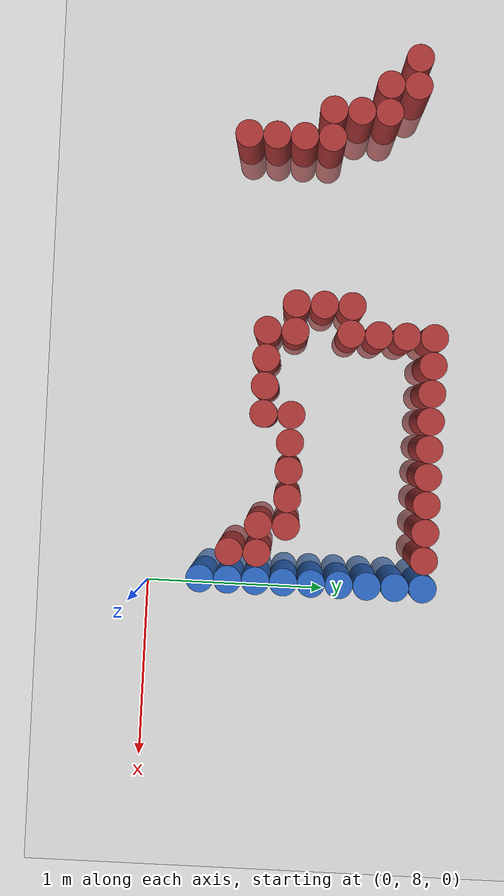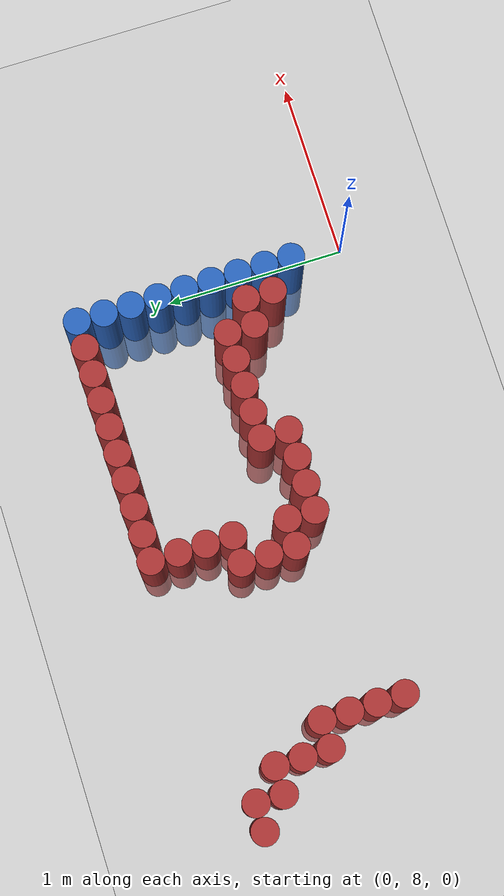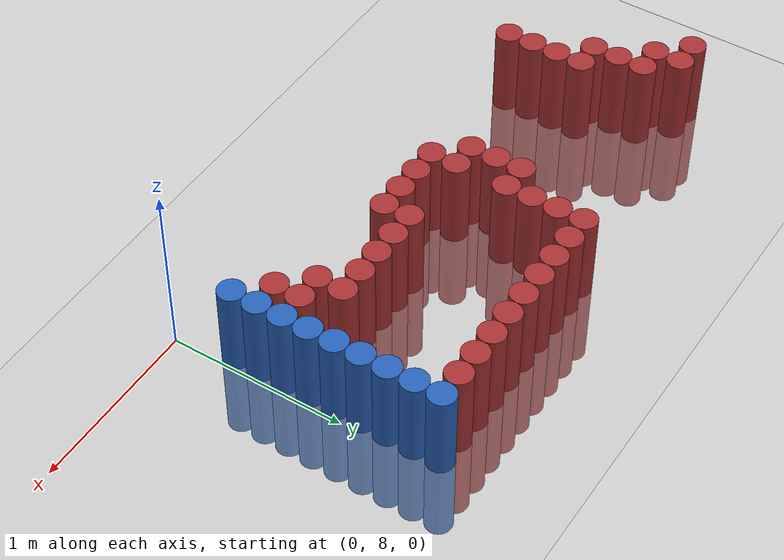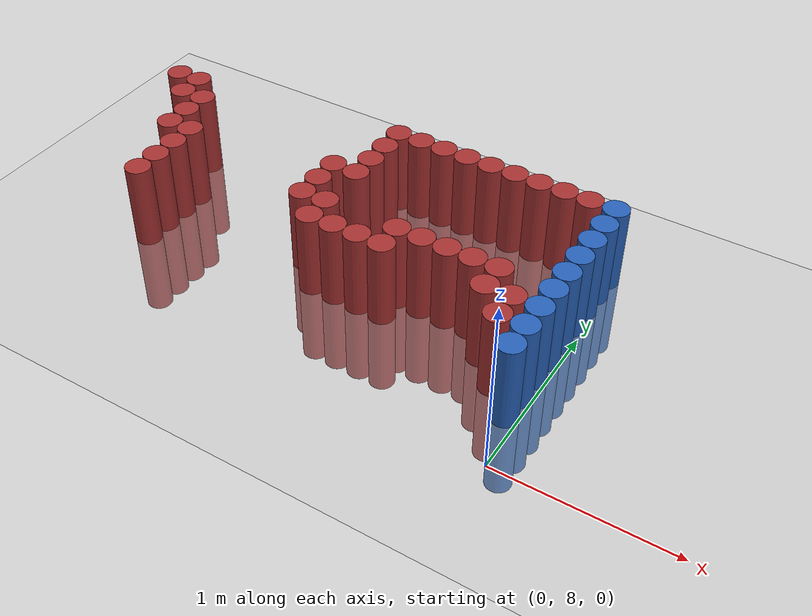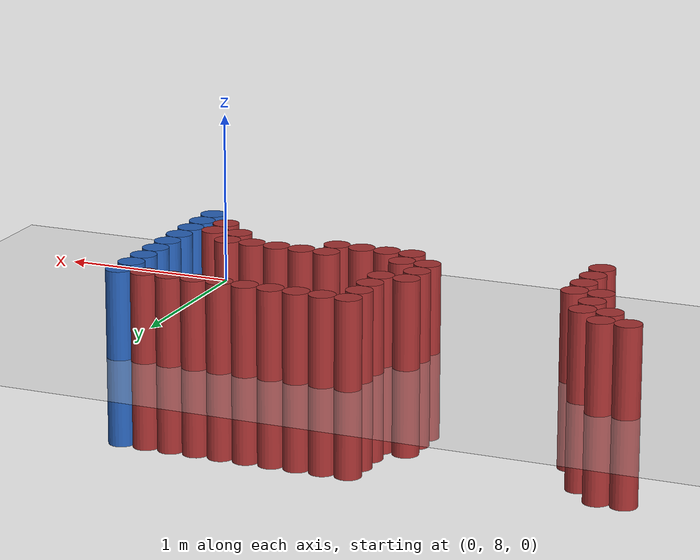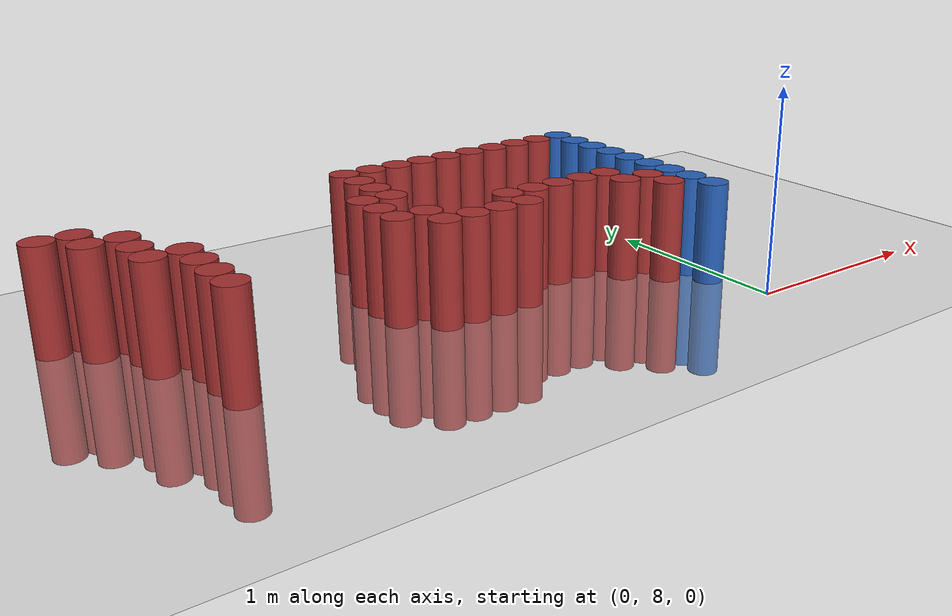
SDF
<sdf version="1.6">
 <world name="default">
  <model name="ground_plane">
   <static>1</static>
   <link name="link">
    <collision name="collision">
     <geometry><plane><normal>0 0 1</normal><size>100 100</size></plane></geometry>
     <surface><friction><ode><mu>100</mu><mu2>50</mu2></ode></friction></surface>
    </collision>
    <visual name="visual">
     <cast_shadows>0</cast_shadows>
     <geometry><plane><normal>0 0 1</normal><size>100 100</size></plane></geometry>
     <material>
      <script><uri>file://media/materials/scripts/gazebo.material</uri><name>Gazebo/Grey</name></script>
     </material>
    </visual>
   </link>
  </model>
  <model name="unit_cylinder_167">
   <static>1</static>
   <pose>-2.925000 9.375000 0.000000 0.000000 0.000000 0.000000</pose>
   <link name="link">
    <inertial>
     <mass>1</mass>
     <inertia><ixx>0.145833</ixx><ixy>0</ixy><ixz>0</ixz><iyy>0.145833</iyy><iyz>0</iyz><izz>0.125</izz></inertia>
    </inertial>
    <collision name="collision">
     <geometry><cylinder><radius>0.075000</radius><length>1</length></cylinder></geometry>
    </collision>
    <visual name="visual">
     <geometry><cylinder><radius>0.075000</radius><length>1</length></cylinder></geometry>
     <material>
      <ambient>0.648000 0.192000 0.192000 1</ambient>
      <diffuse>0.648000 0.192000 0.192000 1</diffuse>
     </material>
     <material>
      <script><name>Gazebo/Grey</name><uri>file://media/materials/scripts/gazebo.material</uri></script>
     </material>
    </visual>
   </link>
  </model>
  <model name="unit_cylinder_172">
   <static>1</static>
   <pose>-2.775000 9.225000 0.000000 0.000000 0.000000 0.000000</pose>
   <link name="link">
    <inertial>
     <mass>1</mass>
     <inertia><ixx>0.145833</ixx><ixy>0</ixy><ixz>0</ixz><iyy>0.145833</iyy><iyz>0</iyz><izz>0.125</izz></inertia>
    </inertial>
    <collision name="collision">
     <geometry><cylinder><radius>0.075000</radius><length>1</length></cylinder></geometry>
    </collision>
    <visual name="visual">
     <geometry><cylinder><radius>0.075000</radius><length>1</length></cylinder></geometry>
     <material>
      <ambient>0.648000 0.192000 0.192000 1</ambient>
      <diffuse>0.648000 0.192000 0.192000 1</diffuse>
     </material>
     <material>
      <script><name>Gazebo/Grey</name><uri>file://media/materials/scripts/gazebo.material</uri></script>
     </material>
    </visual>
   </link>
  </model>
  <model name="unit_cylinder_173">
   <static>1</static>
   <pose>-2.775000 9.375000 0.000000 0.000000 0.000000 0.000000</pose>
   <link name="link">
    <inertial>
     <mass>1</mass>
     <inertia><ixx>0.145833</ixx><ixy>0</ixy><ixz>0</ixz><iyy>0.145833</iyy><iyz>0</iyz><izz>0.125</izz></inertia>
    </inertial>
    <collision name="collision">
     <geometry><cylinder><radius>0.075000</radius><length>1</length></cylinder></geometry>
    </collision>
    <visual name="visual">
     <geometry><cylinder><radius>0.075000</radius><length>1</length></cylinder></geometry>
     <material>
      <ambient>0.648000 0.192000 0.192000 1</ambient>
      <diffuse>0.648000 0.192000 0.192000 1</diffuse>
     </material>
     <material>
      <script><name>Gazebo/Grey</name><uri>file://media/materials/scripts/gazebo.material</uri></script>
     </material>
    </visual>
   </link>
  </model>
  <model name="unit_cylinder_180">
   <static>1</static>
   <pose>-2.625000 8.925000 0.000000 0.000000 0.000000 0.000000</pose>
   <link name="link">
    <inertial>
     <mass>1</mass>
     <inertia><ixx>0.145833</ixx><ixy>0</ixy><ixz>0</ixz><iyy>0.145833</iyy><iyz>0</iyz><izz>0.125</izz></inertia>
    </inertial>
    <collision name="collision">
     <geometry><cylinder><radius>0.075000</radius><length>1</length></cylinder></geometry>
    </collision>
    <visual name="visual">
     <geometry><cylinder><radius>0.075000</radius><length>1</length></cylinder></geometry>
     <material>
      <ambient>0.648000 0.192000 0.192000 1</ambient>
      <diffuse>0.648000 0.192000 0.192000 1</diffuse>
     </material>
     <material>
      <script><name>Gazebo/Grey</name><uri>file://media/materials/scripts/gazebo.material</uri></script>
     </material>
    </visual>
   </link>
  </model>
  <model name="unit_cylinder_181">
   <static>1</static>
   <pose>-2.625000 9.075000 0.000000 0.000000 0.000000 0.000000</pose>
   <link name="link">
    <inertial>
     <mass>1</mass>
     <inertia><ixx>0.145833</ixx><ixy>0</ixy><ixz>0</ixz><iyy>0.145833</iyy><iyz>0</iyz><izz>0.125</izz></inertia>
    </inertial>
    <collision name="collision">
     <geometry><cylinder><radius>0.075000</radius><length>1</length></cylinder></geometry>
    </collision>
    <visual name="visual">
     <geometry><cylinder><radius>0.075000</radius><length>1</length></cylinder></geometry>
     <material>
      <ambient>0.648000 0.192000 0.192000 1</ambient>
      <diffuse>0.648000 0.192000 0.192000 1</diffuse>
     </material>
     <material>
      <script><name>Gazebo/Grey</name><uri>file://media/materials/scripts/gazebo.material</uri></script>
     </material>
    </visual>
   </link>
  </model>
  <model name="unit_cylinder_182">
   <static>1</static>
   <pose>-2.625000 9.225000 0.000000 0.000000 0.000000 0.000000</pose>
   <link name="link">
    <inertial>
     <mass>1</mass>
     <inertia><ixx>0.145833</ixx><ixy>0</ixy><ixz>0</ixz><iyy>0.145833</iyy><iyz>0</iyz><izz>0.125</izz></inertia>
    </inertial>
    <collision name="collision">
     <geometry><cylinder><radius>0.075000</radius><length>1</length></cylinder></geometry>
    </collision>
    <visual name="visual">
     <geometry><cylinder><radius>0.075000</radius><length>1</length></cylinder></geometry>
     <material>
      <ambient>0.648000 0.192000 0.192000 1</ambient>
      <diffuse>0.648000 0.192000 0.192000 1</diffuse>
     </material>
     <material>
      <script><name>Gazebo/Grey</name><uri>file://media/materials/scripts/gazebo.material</uri></script>
     </material>
    </visual>
   </link>
  </model>
  <model name="unit_cylinder_189">
   <static>1</static>
   <pose>-2.475000 8.475000 0.000000 0.000000 0.000000 0.000000</pose>
   <link name="link">
    <inertial>
     <mass>1</mass>
     <inertia><ixx>0.145833</ixx><ixy>0</ixy><ixz>0</ixz><iyy>0.145833</iyy><iyz>0</iyz><izz>0.125</izz></inertia>
    </inertial>
    <collision name="collision">
     <geometry><cylinder><radius>0.075000</radius><length>1</length></cylinder></geometry>
    </collision>
    <visual name="visual">
     <geometry><cylinder><radius>0.075000</radius><length>1</length></cylinder></geometry>
     <material>
      <ambient>0.648000 0.192000 0.192000 1</ambient>
      <diffuse>0.648000 0.192000 0.192000 1</diffuse>
     </material>
     <material>
      <script><name>Gazebo/Grey</name><uri>file://media/materials/scripts/gazebo.material</uri></script>
     </material>
    </visual>
   </link>
  </model>
  <model name="unit_cylinder_190">
   <static>1</static>
   <pose>-2.475000 8.625000 0.000000 0.000000 0.000000 0.000000</pose>
   <link name="link">
    <inertial>
     <mass>1</mass>
     <inertia><ixx>0.145833</ixx><ixy>0</ixy><ixz>0</ixz><iyy>0.145833</iyy><iyz>0</iyz><izz>0.125</izz></inertia>
    </inertial>
    <collision name="collision">
     <geometry><cylinder><radius>0.075000</radius><length>1</length></cylinder></geometry>
    </collision>
    <visual name="visual">
     <geometry><cylinder><radius>0.075000</radius><length>1</length></cylinder></geometry>
     <material>
      <ambient>0.648000 0.192000 0.192000 1</ambient>
      <diffuse>0.648000 0.192000 0.192000 1</diffuse>
     </material>
     <material>
      <script><name>Gazebo/Grey</name><uri>file://media/materials/scripts/gazebo.material</uri></script>
     </material>
    </visual>
   </link>
  </model>
  <model name="unit_cylinder_191">
   <static>1</static>
   <pose>-2.475000 8.775000 0.000000 0.000000 0.000000 0.000000</pose>
   <link name="link">
    <inertial>
     <mass>1</mass>
     <inertia><ixx>0.145833</ixx><ixy>0</ixy><ixz>0</ixz><iyy>0.145833</iyy><iyz>0</iyz><izz>0.125</izz></inertia>
    </inertial>
    <collision name="collision">
     <geometry><cylinder><radius>0.075000</radius><length>1</length></cylinder></geometry>
    </collision>
    <visual name="visual">
     <geometry><cylinder><radius>0.075000</radius><length>1</length></cylinder></geometry>
     <material>
      <ambient>0.648000 0.192000 0.192000 1</ambient>
      <diffuse>0.648000 0.192000 0.192000 1</diffuse>
     </material>
     <material>
      <script><name>Gazebo/Grey</name><uri>file://media/materials/scripts/gazebo.material</uri></script>
     </material>
    </visual>
   </link>
  </model>
  <model name="unit_cylinder_192">
   <static>1</static>
   <pose>-2.475000 8.925000 0.000000 0.000000 0.000000 0.000000</pose>
   <link name="link">
    <inertial>
     <mass>1</mass>
     <inertia><ixx>0.145833</ixx><ixy>0</ixy><ixz>0</ixz><iyy>0.145833</iyy><iyz>0</iyz><izz>0.125</izz></inertia>
    </inertial>
    <collision name="collision">
     <geometry><cylinder><radius>0.075000</radius><length>1</length></cylinder></geometry>
    </collision>
    <visual name="visual">
     <geometry><cylinder><radius>0.075000</radius><length>1</length></cylinder></geometry>
     <material>
      <ambient>0.648000 0.192000 0.192000 1</ambient>
      <diffuse>0.648000 0.192000 0.192000 1</diffuse>
     </material>
     <material>
      <script><name>Gazebo/Grey</name><uri>file://media/materials/scripts/gazebo.material</uri></script>
     </material>
    </visual>
   </link>
  </model>
  <model name="unit_cylinder_203">
   <static>1</static>
   <pose>-1.575000 8.775000 0.000000 0.000000 0.000000 0.000000</pose>
   <link name="link">
    <inertial>
     <mass>1</mass>
     <inertia><ixx>0.145833</ixx><ixy>0</ixy><ixz>0</ixz><iyy>0.145833</iyy><iyz>0</iyz><izz>0.125</izz></inertia>
    </inertial>
    <collision name="collision">
     <geometry><cylinder><radius>0.075000</radius><length>1</length></cylinder></geometry>
    </collision>
    <visual name="visual">
     <geometry><cylinder><radius>0.075000</radius><length>1</length></cylinder></geometry>
     <material>
      <ambient>0.648000 0.192000 0.192000 1</ambient>
      <diffuse>0.648000 0.192000 0.192000 1</diffuse>
     </material>
     <material>
      <script><name>Gazebo/Grey</name><uri>file://media/materials/scripts/gazebo.material</uri></script>
     </material>
    </visual>
   </link>
  </model>
  <model name="unit_cylinder_204">
   <static>1</static>
   <pose>-1.575000 8.925000 0.000000 0.000000 0.000000 0.000000</pose>
   <link name="link">
    <inertial>
     <mass>1</mass>
     <inertia><ixx>0.145833</ixx><ixy>0</ixy><ixz>0</ixz><iyy>0.145833</iyy><iyz>0</iyz><izz>0.125</izz></inertia>
    </inertial>
    <collision name="collision">
     <geometry><cylinder><radius>0.075000</radius><length>1</length></cylinder></geometry>
    </collision>
    <visual name="visual">
     <geometry><cylinder><radius>0.075000</radius><length>1</length></cylinder></geometry>
     <material>
      <ambient>0.648000 0.192000 0.192000 1</ambient>
      <diffuse>0.648000 0.192000 0.192000 1</diffuse>
     </material>
     <material>
      <script><name>Gazebo/Grey</name><uri>file://media/materials/scripts/gazebo.material</uri></script>
     </material>
    </visual>
   </link>
  </model>
  <model name="unit_cylinder_205">
   <static>1</static>
   <pose>-1.575000 9.075000 0.000000 0.000000 0.000000 0.000000</pose>
   <link name="link">
    <inertial>
     <mass>1</mass>
     <inertia><ixx>0.145833</ixx><ixy>0</ixy><ixz>0</ixz><iyy>0.145833</iyy><iyz>0</iyz><izz>0.125</izz></inertia>
    </inertial>
    <collision name="collision">
     <geometry><cylinder><radius>0.075000</radius><length>1</length></cylinder></geometry>
    </collision>
    <visual name="visual">
     <geometry><cylinder><radius>0.075000</radius><length>1</length></cylinder></geometry>
     <material>
      <ambient>0.648000 0.192000 0.192000 1</ambient>
      <diffuse>0.648000 0.192000 0.192000 1</diffuse>
     </material>
     <material>
      <script><name>Gazebo/Grey</name><uri>file://media/materials/scripts/gazebo.material</uri></script>
     </material>
    </visual>
   </link>
  </model>
  <model name="unit_cylinder_206">
   <static>1</static>
   <pose>-1.425000 8.625000 0.000000 0.000000 0.000000 0.000000</pose>
   <link name="link">
    <inertial>
     <mass>1</mass>
     <inertia><ixx>0.145833</ixx><ixy>0</ixy><ixz>0</ixz><iyy>0.145833</iyy><iyz>0</iyz><izz>0.125</izz></inertia>
    </inertial>
    <collision name="collision">
     <geometry><cylinder><radius>0.075000</radius><length>1</length></cylinder></geometry>
    </collision>
    <visual name="visual">
     <geometry><cylinder><radius>0.075000</radius><length>1</length></cylinder></geometry>
     <material>
      <ambient>0.648000 0.192000 0.192000 1</ambient>
      <diffuse>0.648000 0.192000 0.192000 1</diffuse>
     </material>
     <material>
      <script><name>Gazebo/Grey</name><uri>file://media/materials/scripts/gazebo.material</uri></script>
     </material>
    </visual>
   </link>
  </model>
  <model name="unit_cylinder_207">
   <static>1</static>
   <pose>-1.425000 8.775000 0.000000 0.000000 0.000000 0.000000</pose>
   <link name="link">
    <inertial>
     <mass>1</mass>
     <inertia><ixx>0.145833</ixx><ixy>0</ixy><ixz>0</ixz><iyy>0.145833</iyy><iyz>0</iyz><izz>0.125</izz></inertia>
    </inertial>
    <collision name="collision">
     <geometry><cylinder><radius>0.075000</radius><length>1</length></cylinder></geometry>
    </collision>
    <visual name="visual">
     <geometry><cylinder><radius>0.075000</radius><length>1</length></cylinder></geometry>
     <material>
      <ambient>0.648000 0.192000 0.192000 1</ambient>
      <diffuse>0.648000 0.192000 0.192000 1</diffuse>
     </material>
     <material>
      <script><name>Gazebo/Grey</name><uri>file://media/materials/scripts/gazebo.material</uri></script>
     </material>
    </visual>
   </link>
  </model>
  <model name="unit_cylinder_208">
   <static>1</static>
   <pose>-1.425000 9.075000 0.000000 0.000000 0.000000 0.000000</pose>
   <link name="link">
    <inertial>
     <mass>1</mass>
     <inertia><ixx>0.145833</ixx><ixy>0</ixy><ixz>0</ixz><iyy>0.145833</iyy><iyz>0</iyz><izz>0.125</izz></inertia>
    </inertial>
    <collision name="collision">
     <geometry><cylinder><radius>0.075000</radius><length>1</length></cylinder></geometry>
    </collision>
    <visual name="visual">
     <geometry><cylinder><radius>0.075000</radius><length>1</length></cylinder></geometry>
     <material>
      <ambient>0.648000 0.192000 0.192000 1</ambient>
      <diffuse>0.648000 0.192000 0.192000 1</diffuse>
     </material>
     <material>
      <script><name>Gazebo/Grey</name><uri>file://media/materials/scripts/gazebo.material</uri></script>
     </material>
    </visual>
   </link>
  </model>
  <model name="unit_cylinder_209">
   <static>1</static>
   <pose>-1.425000 9.225000 0.000000 0.000000 0.000000 0.000000</pose>
   <link name="link">
    <inertial>
     <mass>1</mass>
     <inertia><ixx>0.145833</ixx><ixy>0</ixy><ixz>0</ixz><iyy>0.145833</iyy><iyz>0</iyz><izz>0.125</izz></inertia>
    </inertial>
    <collision name="collision">
     <geometry><cylinder><radius>0.075000</radius><length>1</length></cylinder></geometry>
    </collision>
    <visual name="visual">
     <geometry><cylinder><radius>0.075000</radius><length>1</length></cylinder></geometry>
     <material>
      <ambient>0.648000 0.192000 0.192000 1</ambient>
      <diffuse>0.648000 0.192000 0.192000 1</diffuse>
     </material>
     <material>
      <script><name>Gazebo/Grey</name><uri>file://media/materials/scripts/gazebo.material</uri></script>
     </material>
    </visual>
   </link>
  </model>
  <model name="unit_cylinder_210">
   <static>1</static>
   <pose>-1.425000 9.375000 0.000000 0.000000 0.000000 0.000000</pose>
   <link name="link">
    <inertial>
     <mass>1</mass>
     <inertia><ixx>0.145833</ixx><ixy>0</ixy><ixz>0</ixz><iyy>0.145833</iyy><iyz>0</iyz><izz>0.125</izz></inertia>
    </inertial>
    <collision name="collision">
     <geometry><cylinder><radius>0.075000</radius><length>1</length></cylinder></geometry>
    </collision>
    <visual name="visual">
     <geometry><cylinder><radius>0.075000</radius><length>1</length></cylinder></geometry>
     <material>
      <ambient>0.648000 0.192000 0.192000 1</ambient>
      <diffuse>0.648000 0.192000 0.192000 1</diffuse>
     </material>
     <material>
      <script><name>Gazebo/Grey</name><uri>file://media/materials/scripts/gazebo.material</uri></script>
     </material>
    </visual>
   </link>
  </model>
  <model name="unit_cylinder_211">
   <static>1</static>
   <pose>-1.425000 9.525000 0.000000 0.000000 0.000000 0.000000</pose>
   <link name="link">
    <inertial>
     <mass>1</mass>
     <inertia><ixx>0.145833</ixx><ixy>0</ixy><ixz>0</ixz><iyy>0.145833</iyy><iyz>0</iyz><izz>0.125</izz></inertia>
    </inertial>
    <collision name="collision">
     <geometry><cylinder><radius>0.075000</radius><length>1</length></cylinder></geometry>
    </collision>
    <visual name="visual">
     <geometry><cylinder><radius>0.075000</radius><length>1</length></cylinder></geometry>
     <material>
      <ambient>0.648000 0.192000 0.192000 1</ambient>
      <diffuse>0.648000 0.192000 0.192000 1</diffuse>
     </material>
     <material>
      <script><name>Gazebo/Grey</name><uri>file://media/materials/scripts/gazebo.material</uri></script>
     </material>
    </visual>
   </link>
  </model>
  <model name="unit_cylinder_212">
   <static>1</static>
   <pose>-1.275000 8.625000 0.000000 0.000000 0.000000 0.000000</pose>
   <link name="link">
    <inertial>
     <mass>1</mass>
     <inertia><ixx>0.145833</ixx><ixy>0</ixy><ixz>0</ixz><iyy>0.145833</iyy><iyz>0</iyz><izz>0.125</izz></inertia>
    </inertial>
    <collision name="collision">
     <geometry><cylinder><radius>0.075000</radius><length>1</length></cylinder></geometry>
    </collision>
    <visual name="visual">
     <geometry><cylinder><radius>0.075000</radius><length>1</length></cylinder></geometry>
     <material>
      <ambient>0.648000 0.192000 0.192000 1</ambient>
      <diffuse>0.648000 0.192000 0.192000 1</diffuse>
     </material>
     <material>
      <script><name>Gazebo/Grey</name><uri>file://media/materials/scripts/gazebo.material</uri></script>
     </material>
    </visual>
   </link>
  </model>
  <model name="unit_cylinder_213">
   <static>1</static>
   <pose>-1.275000 9.525000 0.000000 0.000000 0.000000 0.000000</pose>
   <link name="link">
    <inertial>
     <mass>1</mass>
     <inertia><ixx>0.145833</ixx><ixy>0</ixy><ixz>0</ixz><iyy>0.145833</iyy><iyz>0</iyz><izz>0.125</izz></inertia>
    </inertial>
    <collision name="collision">
     <geometry><cylinder><radius>0.075000</radius><length>1</length></cylinder></geometry>
    </collision>
    <visual name="visual">
     <geometry><cylinder><radius>0.075000</radius><length>1</length></cylinder></geometry>
     <material>
      <ambient>0.648000 0.192000 0.192000 1</ambient>
      <diffuse>0.648000 0.192000 0.192000 1</diffuse>
     </material>
     <material>
      <script><name>Gazebo/Grey</name><uri>file://media/materials/scripts/gazebo.material</uri></script>
     </material>
    </visual>
   </link>
  </model>
  <model name="unit_cylinder_214">
   <static>1</static>
   <pose>-1.125000 8.625000 0.000000 0.000000 0.000000 0.000000</pose>
   <link name="link">
    <inertial>
     <mass>1</mass>
     <inertia><ixx>0.145833</ixx><ixy>0</ixy><ixz>0</ixz><iyy>0.145833</iyy><iyz>0</iyz><izz>0.125</izz></inertia>
    </inertial>
    <collision name="collision">
     <geometry><cylinder><radius>0.075000</radius><length>1</length></cylinder></geometry>
    </collision>
    <visual name="visual">
     <geometry><cylinder><radius>0.075000</radius><length>1</length></cylinder></geometry>
     <material>
      <ambient>0.648000 0.192000 0.192000 1</ambient>
      <diffuse>0.648000 0.192000 0.192000 1</diffuse>
     </material>
     <material>
      <script><name>Gazebo/Grey</name><uri>file://media/materials/scripts/gazebo.material</uri></script>
     </material>
    </visual>
   </link>
  </model>
  <model name="unit_cylinder_215">
   <static>1</static>
   <pose>-1.125000 9.525000 0.000000 0.000000 0.000000 0.000000</pose>
   <link name="link">
    <inertial>
     <mass>1</mass>
     <inertia><ixx>0.145833</ixx><ixy>0</ixy><ixz>0</ixz><iyy>0.145833</iyy><iyz>0</iyz><izz>0.125</izz></inertia>
    </inertial>
    <collision name="collision">
     <geometry><cylinder><radius>0.075000</radius><length>1</length></cylinder></geometry>
    </collision>
    <visual name="visual">
     <geometry><cylinder><radius>0.075000</radius><length>1</length></cylinder></geometry>
     <material>
      <ambient>0.648000 0.192000 0.192000 1</ambient>
      <diffuse>0.648000 0.192000 0.192000 1</diffuse>
     </material>
     <material>
      <script><name>Gazebo/Grey</name><uri>file://media/materials/scripts/gazebo.material</uri></script>
     </material>
    </visual>
   </link>
  </model>
  <model name="unit_cylinder_216">
   <static>1</static>
   <pose>-0.975000 8.625000 0.000000 0.000000 0.000000 0.000000</pose>
   <link name="link">
    <inertial>
     <mass>1</mass>
     <inertia><ixx>0.145833</ixx><ixy>0</ixy><ixz>0</ixz><iyy>0.145833</iyy><iyz>0</iyz><izz>0.125</izz></inertia>
    </inertial>
    <collision name="collision">
     <geometry><cylinder><radius>0.075000</radius><length>1</length></cylinder></geometry>
    </collision>
    <visual name="visual">
     <geometry><cylinder><radius>0.075000</radius><length>1</length></cylinder></geometry>
     <material>
      <ambient>0.648000 0.192000 0.192000 1</ambient>
      <diffuse>0.648000 0.192000 0.192000 1</diffuse>
     </material>
     <material>
      <script><name>Gazebo/Grey</name><uri>file://media/materials/scripts/gazebo.material</uri></script>
     </material>
    </visual>
   </link>
  </model>
  <model name="unit_cylinder_217">
   <static>1</static>
   <pose>-0.975000 8.775000 0.000000 0.000000 0.000000 0.000000</pose>
   <link name="link">
    <inertial>
     <mass>1</mass>
     <inertia><ixx>0.145833</ixx><ixy>0</ixy><ixz>0</ixz><iyy>0.145833</iyy><iyz>0</iyz><izz>0.125</izz></inertia>
    </inertial>
    <collision name="collision">
     <geometry><cylinder><radius>0.075000</radius><length>1</length></cylinder></geometry>
    </collision>
    <visual name="visual">
     <geometry><cylinder><radius>0.075000</radius><length>1</length></cylinder></geometry>
     <material>
      <ambient>0.648000 0.192000 0.192000 1</ambient>
      <diffuse>0.648000 0.192000 0.192000 1</diffuse>
     </material>
     <material>
      <script><name>Gazebo/Grey</name><uri>file://media/materials/scripts/gazebo.material</uri></script>
     </material>
    </visual>
   </link>
  </model>
  <model name="unit_cylinder_218">
   <static>1</static>
   <pose>-0.975000 9.525000 0.000000 0.000000 0.000000 0.000000</pose>
   <link name="link">
    <inertial>
     <mass>1</mass>
     <inertia><ixx>0.145833</ixx><ixy>0</ixy><ixz>0</ixz><iyy>0.145833</iyy><iyz>0</iyz><izz>0.125</izz></inertia>
    </inertial>
    <collision name="collision">
     <geometry><cylinder><radius>0.075000</radius><length>1</length></cylinder></geometry>
    </collision>
    <visual name="visual">
     <geometry><cylinder><radius>0.075000</radius><length>1</length></cylinder></geometry>
     <material>
      <ambient>0.648000 0.192000 0.192000 1</ambient>
      <diffuse>0.648000 0.192000 0.192000 1</diffuse>
     </material>
     <material>
      <script><name>Gazebo/Grey</name><uri>file://media/materials/scripts/gazebo.material</uri></script>
     </material>
    </visual>
   </link>
  </model>
  <model name="unit_cylinder_219">
   <static>1</static>
   <pose>-0.825000 8.775000 0.000000 0.000000 0.000000 0.000000</pose>
   <link name="link">
    <inertial>
     <mass>1</mass>
     <inertia><ixx>0.145833</ixx><ixy>0</ixy><ixz>0</ixz><iyy>0.145833</iyy><iyz>0</iyz><izz>0.125</izz></inertia>
    </inertial>
    <collision name="collision">
     <geometry><cylinder><radius>0.075000</radius><length>1</length></cylinder></geometry>
    </collision>
    <visual name="visual">
     <geometry><cylinder><radius>0.075000</radius><length>1</length></cylinder></geometry>
     <material>
      <ambient>0.648000 0.192000 0.192000 1</ambient>
      <diffuse>0.648000 0.192000 0.192000 1</diffuse>
     </material>
     <material>
      <script><name>Gazebo/Grey</name><uri>file://media/materials/scripts/gazebo.material</uri></script>
     </material>
    </visual>
   </link>
  </model>
  <model name="unit_cylinder_220">
   <static>1</static>
   <pose>-0.825000 9.525000 0.000000 0.000000 0.000000 0.000000</pose>
   <link name="link">
    <inertial>
     <mass>1</mass>
     <inertia><ixx>0.145833</ixx><ixy>0</ixy><ixz>0</ixz><iyy>0.145833</iyy><iyz>0</iyz><izz>0.125</izz></inertia>
    </inertial>
    <collision name="collision">
     <geometry><cylinder><radius>0.075000</radius><length>1</length></cylinder></geometry>
    </collision>
    <visual name="visual">
     <geometry><cylinder><radius>0.075000</radius><length>1</length></cylinder></geometry>
     <material>
      <ambient>0.648000 0.192000 0.192000 1</ambient>
      <diffuse>0.648000 0.192000 0.192000 1</diffuse>
     </material>
     <material>
      <script><name>Gazebo/Grey</name><uri>file://media/materials/scripts/gazebo.material</uri></script>
     </material>
    </visual>
   </link>
  </model>
  <model name="unit_cylinder_225">
   <static>1</static>
   <pose>-0.675000 8.775000 0.000000 0.000000 0.000000 0.000000</pose>
   <link name="link">
    <inertial>
     <mass>1</mass>
     <inertia><ixx>0.145833</ixx><ixy>0</ixy><ixz>0</ixz><iyy>0.145833</iyy><iyz>0</iyz><izz>0.125</izz></inertia>
    </inertial>
    <collision name="collision">
     <geometry><cylinder><radius>0.075000</radius><length>1</length></cylinder></geometry>
    </collision>
    <visual name="visual">
     <geometry><cylinder><radius>0.075000</radius><length>1</length></cylinder></geometry>
     <material>
      <ambient>0.648000 0.192000 0.192000 1</ambient>
      <diffuse>0.648000 0.192000 0.192000 1</diffuse>
     </material>
     <material>
      <script><name>Gazebo/Grey</name><uri>file://media/materials/scripts/gazebo.material</uri></script>
     </material>
    </visual>
   </link>
  </model>
  <model name="unit_cylinder_226">
   <static>1</static>
   <pose>-0.675000 9.525000 0.000000 0.000000 0.000000 0.000000</pose>
   <link name="link">
    <inertial>
     <mass>1</mass>
     <inertia><ixx>0.145833</ixx><ixy>0</ixy><ixz>0</ixz><iyy>0.145833</iyy><iyz>0</iyz><izz>0.125</izz></inertia>
    </inertial>
    <collision name="collision">
     <geometry><cylinder><radius>0.075000</radius><length>1</length></cylinder></geometry>
    </collision>
    <visual name="visual">
     <geometry><cylinder><radius>0.075000</radius><length>1</length></cylinder></geometry>
     <material>
      <ambient>0.648000 0.192000 0.192000 1</ambient>
      <diffuse>0.648000 0.192000 0.192000 1</diffuse>
     </material>
     <material>
      <script><name>Gazebo/Grey</name><uri>file://media/materials/scripts/gazebo.material</uri></script>
     </material>
    </visual>
   </link>
  </model>
  <model name="unit_cylinder_229">
   <static>1</static>
   <pose>-0.525000 8.775000 0.000000 0.000000 0.000000 0.000000</pose>
   <link name="link">
    <inertial>
     <mass>1</mass>
     <inertia><ixx>0.145833</ixx><ixy>0</ixy><ixz>0</ixz><iyy>0.145833</iyy><iyz>0</iyz><izz>0.125</izz></inertia>
    </inertial>
    <collision name="collision">
     <geometry><cylinder><radius>0.075000</radius><length>1</length></cylinder></geometry>
    </collision>
    <visual name="visual">
     <geometry><cylinder><radius>0.075000</radius><length>1</length></cylinder></geometry>
     <material>
      <ambient>0.648000 0.192000 0.192000 1</ambient>
      <diffuse>0.648000 0.192000 0.192000 1</diffuse>
     </material>
     <material>
      <script><name>Gazebo/Grey</name><uri>file://media/materials/scripts/gazebo.material</uri></script>
     </material>
    </visual>
   </link>
  </model>
  <model name="unit_cylinder_230">
   <static>1</static>
   <pose>-0.525000 9.525000 0.000000 0.000000 0.000000 0.000000</pose>
   <link name="link">
    <inertial>
     <mass>1</mass>
     <inertia><ixx>0.145833</ixx><ixy>0</ixy><ixz>0</ixz><iyy>0.145833</iyy><iyz>0</iyz><izz>0.125</izz></inertia>
    </inertial>
    <collision name="collision">
     <geometry><cylinder><radius>0.075000</radius><length>1</length></cylinder></geometry>
    </collision>
    <visual name="visual">
     <geometry><cylinder><radius>0.075000</radius><length>1</length></cylinder></geometry>
     <material>
      <ambient>0.648000 0.192000 0.192000 1</ambient>
      <diffuse>0.648000 0.192000 0.192000 1</diffuse>
     </material>
     <material>
      <script><name>Gazebo/Grey</name><uri>file://media/materials/scripts/gazebo.material</uri></script>
     </material>
    </visual>
   </link>
  </model>
  <model name="unit_cylinder_236">
   <static>1</static>
   <pose>-0.375000 8.625000 0.000000 0.000000 0.000000 0.000000</pose>
   <link name="link">
    <inertial>
     <mass>1</mass>
     <inertia><ixx>0.145833</ixx><ixy>0</ixy><ixz>0</ixz><iyy>0.145833</iyy><iyz>0</iyz><izz>0.125</izz></inertia>
    </inertial>
    <collision name="collision">
     <geometry><cylinder><radius>0.075000</radius><length>1</length></cylinder></geometry>
    </collision>
    <visual name="visual">
     <geometry><cylinder><radius>0.075000</radius><length>1</length></cylinder></geometry>
     <material>
      <ambient>0.648000 0.192000 0.192000 1</ambient>
      <diffuse>0.648000 0.192000 0.192000 1</diffuse>
     </material>
     <material>
      <script><name>Gazebo/Grey</name><uri>file://media/materials/scripts/gazebo.material</uri></script>
     </material>
    </visual>
   </link>
  </model>
  <model name="unit_cylinder_237">
   <static>1</static>
   <pose>-0.375000 8.775000 0.000000 0.000000 0.000000 0.000000</pose>
   <link name="link">
    <inertial>
     <mass>1</mass>
     <inertia><ixx>0.145833</ixx><ixy>0</ixy><ixz>0</ixz><iyy>0.145833</iyy><iyz>0</iyz><izz>0.125</izz></inertia>
    </inertial>
    <collision name="collision">
     <geometry><cylinder><radius>0.075000</radius><length>1</length></cylinder></geometry>
    </collision>
    <visual name="visual">
     <geometry><cylinder><radius>0.075000</radius><length>1</length></cylinder></geometry>
     <material>
      <ambient>0.648000 0.192000 0.192000 1</ambient>
      <diffuse>0.648000 0.192000 0.192000 1</diffuse>
     </material>
     <material>
      <script><name>Gazebo/Grey</name><uri>file://media/materials/scripts/gazebo.material</uri></script>
     </material>
    </visual>
   </link>
  </model>
  <model name="unit_cylinder_238">
   <static>1</static>
   <pose>-0.375000 9.525000 0.000000 0.000000 0.000000 0.000000</pose>
   <link name="link">
    <inertial>
     <mass>1</mass>
     <inertia><ixx>0.145833</ixx><ixy>0</ixy><ixz>0</ixz><iyy>0.145833</iyy><iyz>0</iyz><izz>0.125</izz></inertia>
    </inertial>
    <collision name="collision">
     <geometry><cylinder><radius>0.075000</radius><length>1</length></cylinder></geometry>
    </collision>
    <visual name="visual">
     <geometry><cylinder><radius>0.075000</radius><length>1</length></cylinder></geometry>
     <material>
      <ambient>0.648000 0.192000 0.192000 1</ambient>
      <diffuse>0.648000 0.192000 0.192000 1</diffuse>
     </material>
     <material>
      <script><name>Gazebo/Grey</name><uri>file://media/materials/scripts/gazebo.material</uri></script>
     </material>
    </visual>
   </link>
  </model>
  <model name="unit_cylinder_248">
   <static>1</static>
   <pose>-0.225000 8.475000 0.000000 0.000000 0.000000 0.000000</pose>
   <link name="link">
    <inertial>
     <mass>1</mass>
     <inertia><ixx>0.145833</ixx><ixy>0</ixy><ixz>0</ixz><iyy>0.145833</iyy><iyz>0</iyz><izz>0.125</izz></inertia>
    </inertial>
    <collision name="collision">
     <geometry><cylinder><radius>0.075000</radius><length>1</length></cylinder></geometry>
    </collision>
    <visual name="visual">
     <geometry><cylinder><radius>0.075000</radius><length>1</length></cylinder></geometry>
     <material>
      <ambient>0.648000 0.192000 0.192000 1</ambient>
      <diffuse>0.648000 0.192000 0.192000 1</diffuse>
     </material>
     <material>
      <script><name>Gazebo/Grey</name><uri>file://media/materials/scripts/gazebo.material</uri></script>
     </material>
    </visual>
   </link>
  </model>
  <model name="unit_cylinder_249">
   <static>1</static>
   <pose>-0.225000 8.625000 0.000000 0.000000 0.000000 0.000000</pose>
   <link name="link">
    <inertial>
     <mass>1</mass>
     <inertia><ixx>0.145833</ixx><ixy>0</ixy><ixz>0</ixz><iyy>0.145833</iyy><iyz>0</iyz><izz>0.125</izz></inertia>
    </inertial>
    <collision name="collision">
     <geometry><cylinder><radius>0.075000</radius><length>1</length></cylinder></geometry>
    </collision>
    <visual name="visual">
     <geometry><cylinder><radius>0.075000</radius><length>1</length></cylinder></geometry>
     <material>
      <ambient>0.648000 0.192000 0.192000 1</ambient>
      <diffuse>0.648000 0.192000 0.192000 1</diffuse>
     </material>
     <material>
      <script><name>Gazebo/Grey</name><uri>file://media/materials/scripts/gazebo.material</uri></script>
     </material>
    </visual>
   </link>
  </model>
  <model name="unit_cylinder_250">
   <static>1</static>
   <pose>-0.225000 9.525000 0.000000 0.000000 0.000000 0.000000</pose>
   <link name="link">
    <inertial>
     <mass>1</mass>
     <inertia><ixx>0.145833</ixx><ixy>0</ixy><ixz>0</ixz><iyy>0.145833</iyy><iyz>0</iyz><izz>0.125</izz></inertia>
    </inertial>
    <collision name="collision">
     <geometry><cylinder><radius>0.075000</radius><length>1</length></cylinder></geometry>
    </collision>
    <visual name="visual">
     <geometry><cylinder><radius>0.075000</radius><length>1</length></cylinder></geometry>
     <material>
      <ambient>0.648000 0.192000 0.192000 1</ambient>
      <diffuse>0.648000 0.192000 0.192000 1</diffuse>
     </material>
     <material>
      <script><name>Gazebo/Grey</name><uri>file://media/materials/scripts/gazebo.material</uri></script>
     </material>
    </visual>
   </link>
  </model>
  <model name="unit_cylinder_272">
   <static>1</static>
   <pose>-0.075000 8.325000 0.000000 0.000000 0.000000 0.000000</pose>
   <link name="link">
    <inertial>
     <mass>1</mass>
     <inertia><ixx>0.145833</ixx><ixy>0</ixy><ixz>0</ixz><iyy>0.145833</iyy><iyz>0</iyz><izz>0.125</izz></inertia>
    </inertial>
    <collision name="collision">
     <geometry><cylinder><radius>0.075000</radius><length>1</length></cylinder></geometry>
    </collision>
    <visual name="visual">
     <geometry><cylinder><radius>0.075000</radius><length>1</length></cylinder></geometry>
     <material>
      <ambient>0.152000 0.379000 0.720000 1</ambient>
      <diffuse>0.152000 0.379000 0.720000 1</diffuse>
     </material>
     <material>
      <script><name>Gazebo/Grey</name><uri>file://media/materials/scripts/gazebo.material</uri></script>
     </material>
    </visual>
   </link>
  </model>
  <model name="unit_cylinder_273">
   <static>1</static>
   <pose>-0.075000 8.475000 0.000000 0.000000 0.000000 0.000000</pose>
   <link name="link">
    <inertial>
     <mass>1</mass>
     <inertia><ixx>0.145833</ixx><ixy>0</ixy><ixz>0</ixz><iyy>0.145833</iyy><iyz>0</iyz><izz>0.125</izz></inertia>
    </inertial>
    <collision name="collision">
     <geometry><cylinder><radius>0.075000</radius><length>1</length></cylinder></geometry>
    </collision>
    <visual name="visual">
     <geometry><cylinder><radius>0.075000</radius><length>1</length></cylinder></geometry>
     <material>
      <ambient>0.152000 0.379000 0.720000 1</ambient>
      <diffuse>0.152000 0.379000 0.720000 1</diffuse>
     </material>
     <material>
      <script><name>Gazebo/Grey</name><uri>file://media/materials/scripts/gazebo.material</uri></script>
     </material>
    </visual>
   </link>
  </model>
  <model name="unit_cylinder_274">
   <static>1</static>
   <pose>-0.075000 8.625000 0.000000 0.000000 0.000000 0.000000</pose>
   <link name="link">
    <inertial>
     <mass>1</mass>
     <inertia><ixx>0.145833</ixx><ixy>0</ixy><ixz>0</ixz><iyy>0.145833</iyy><iyz>0</iyz><izz>0.125</izz></inertia>
    </inertial>
    <collision name="collision">
     <geometry><cylinder><radius>0.075000</radius><length>1</length></cylinder></geometry>
    </collision>
    <visual name="visual">
     <geometry><cylinder><radius>0.075000</radius><length>1</length></cylinder></geometry>
     <material>
      <ambient>0.152000 0.379000 0.720000 1</ambient>
      <diffuse>0.152000 0.379000 0.720000 1</diffuse>
     </material>
     <material>
      <script><name>Gazebo/Grey</name><uri>file://media/materials/scripts/gazebo.material</uri></script>
     </material>
    </visual>
   </link>
  </model>
  <model name="unit_cylinder_275">
   <static>1</static>
   <pose>-0.075000 8.775000 0.000000 0.000000 0.000000 0.000000</pose>
   <link name="link">
    <inertial>
     <mass>1</mass>
     <inertia><ixx>0.145833</ixx><ixy>0</ixy><ixz>0</ixz><iyy>0.145833</iyy><iyz>0</iyz><izz>0.125</izz></inertia>
    </inertial>
    <collision name="collision">
     <geometry><cylinder><radius>0.075000</radius><length>1</length></cylinder></geometry>
    </collision>
    <visual name="visual">
     <geometry><cylinder><radius>0.075000</radius><length>1</length></cylinder></geometry>
     <material>
      <ambient>0.152000 0.379000 0.720000 1</ambient>
      <diffuse>0.152000 0.379000 0.720000 1</diffuse>
     </material>
     <material>
      <script><name>Gazebo/Grey</name><uri>file://media/materials/scripts/gazebo.material</uri></script>
     </material>
    </visual>
   </link>
  </model>
  <model name="unit_cylinder_276">
   <static>1</static>
   <pose>-0.075000 8.925000 0.000000 0.000000 0.000000 0.000000</pose>
   <link name="link">
    <inertial>
     <mass>1</mass>
     <inertia><ixx>0.145833</ixx><ixy>0</ixy><ixz>0</ixz><iyy>0.145833</iyy><iyz>0</iyz><izz>0.125</izz></inertia>
    </inertial>
    <collision name="collision">
     <geometry><cylinder><radius>0.075000</radius><length>1</length></cylinder></geometry>
    </collision>
    <visual name="visual">
     <geometry><cylinder><radius>0.075000</radius><length>1</length></cylinder></geometry>
     <material>
      <ambient>0.152000 0.379000 0.720000 1</ambient>
      <diffuse>0.152000 0.379000 0.720000 1</diffuse>
     </material>
     <material>
      <script><name>Gazebo/Grey</name><uri>file://media/materials/scripts/gazebo.material</uri></script>
     </material>
    </visual>
   </link>
  </model>
  <model name="unit_cylinder_277">
   <static>1</static>
   <pose>-0.075000 9.075000 0.000000 0.000000 0.000000 0.000000</pose>
   <link name="link">
    <inertial>
     <mass>1</mass>
     <inertia><ixx>0.145833</ixx><ixy>0</ixy><ixz>0</ixz><iyy>0.145833</iyy><iyz>0</iyz><izz>0.125</izz></inertia>
    </inertial>
    <collision name="collision">
     <geometry><cylinder><radius>0.075000</radius><length>1</length></cylinder></geometry>
    </collision>
    <visual name="visual">
     <geometry><cylinder><radius>0.075000</radius><length>1</length></cylinder></geometry>
     <material>
      <ambient>0.152000 0.379000 0.720000 1</ambient>
      <diffuse>0.152000 0.379000 0.720000 1</diffuse>
     </material>
     <material>
      <script><name>Gazebo/Grey</name><uri>file://media/materials/scripts/gazebo.material</uri></script>
     </material>
    </visual>
   </link>
  </model>
  <model name="unit_cylinder_278">
   <static>1</static>
   <pose>-0.075000 9.225000 0.000000 0.000000 0.000000 0.000000</pose>
   <link name="link">
    <inertial>
     <mass>1</mass>
     <inertia><ixx>0.145833</ixx><ixy>0</ixy><ixz>0</ixz><iyy>0.145833</iyy><iyz>0</iyz><izz>0.125</izz></inertia>
    </inertial>
    <collision name="collision">
     <geometry><cylinder><radius>0.075000</radius><length>1</length></cylinder></geometry>
    </collision>
    <visual name="visual">
     <geometry><cylinder><radius>0.075000</radius><length>1</length></cylinder></geometry>
     <material>
      <ambient>0.152000 0.379000 0.720000 1</ambient>
      <diffuse>0.152000 0.379000 0.720000 1</diffuse>
     </material>
     <material>
      <script><name>Gazebo/Grey</name><uri>file://media/materials/scripts/gazebo.material</uri></script>
     </material>
    </visual>
   </link>
  </model>
  <model name="unit_cylinder_279">
   <static>1</static>
   <pose>-0.075000 9.375000 0.000000 0.000000 0.000000 0.000000</pose>
   <link name="link">
    <inertial>
     <mass>1</mass>
     <inertia><ixx>0.145833</ixx><ixy>0</ixy><ixz>0</ixz><iyy>0.145833</iyy><iyz>0</iyz><izz>0.125</izz></inertia>
    </inertial>
    <collision name="collision">
     <geometry><cylinder><radius>0.075000</radius><length>1</length></cylinder></geometry>
    </collision>
    <visual name="visual">
     <geometry><cylinder><radius>0.075000</radius><length>1</length></cylinder></geometry>
     <material>
      <ambient>0.152000 0.379000 0.720000 1</ambient>
      <diffuse>0.152000 0.379000 0.720000 1</diffuse>
     </material>
     <material>
      <script><name>Gazebo/Grey</name><uri>file://media/materials/scripts/gazebo.material</uri></script>
     </material>
    </visual>
   </link>
  </model>
  <model name="unit_cylinder_280">
   <static>1</static>
   <pose>-0.075000 9.525000 0.000000 0.000000 0.000000 0.000000</pose>
   <link name="link">
    <inertial>
     <mass>1</mass>
     <inertia><ixx>0.145833</ixx><ixy>0</ixy><ixz>0</ixz><iyy>0.145833</iyy><iyz>0</iyz><izz>0.125</izz></inertia>
    </inertial>
    <collision name="collision">
     <geometry><cylinder><radius>0.075000</radius><length>1</length></cylinder></geometry>
    </collision>
    <visual name="visual">
     <geometry><cylinder><radius>0.075000</radius><length>1</length></cylinder></geometry>
     <material>
      <ambient>0.152000 0.379000 0.720000 1</ambient>
      <diffuse>0.152000 0.379000 0.720000 1</diffuse>
     </material>
     <material>
      <script><name>Gazebo/Grey</name><uri>file://media/materials/scripts/gazebo.material</uri></script>
     </material>
    </visual>
   </link>
  </model>
 </world>
</sdf>
